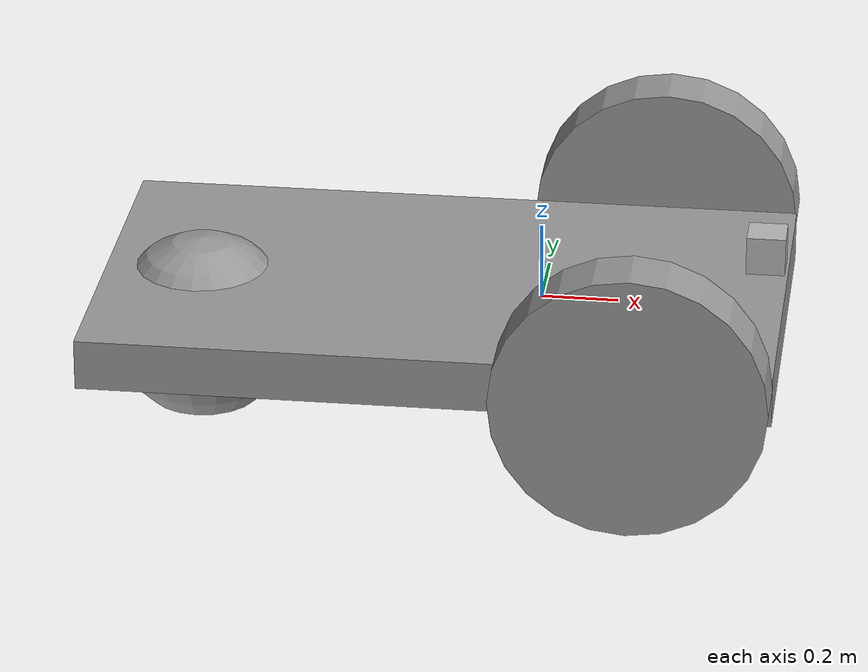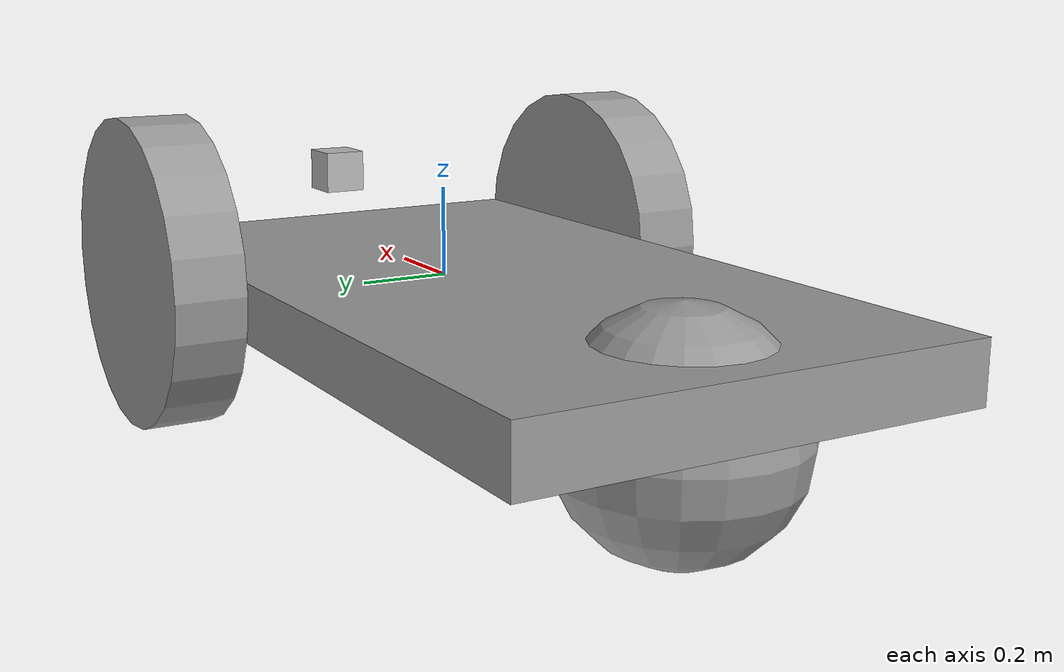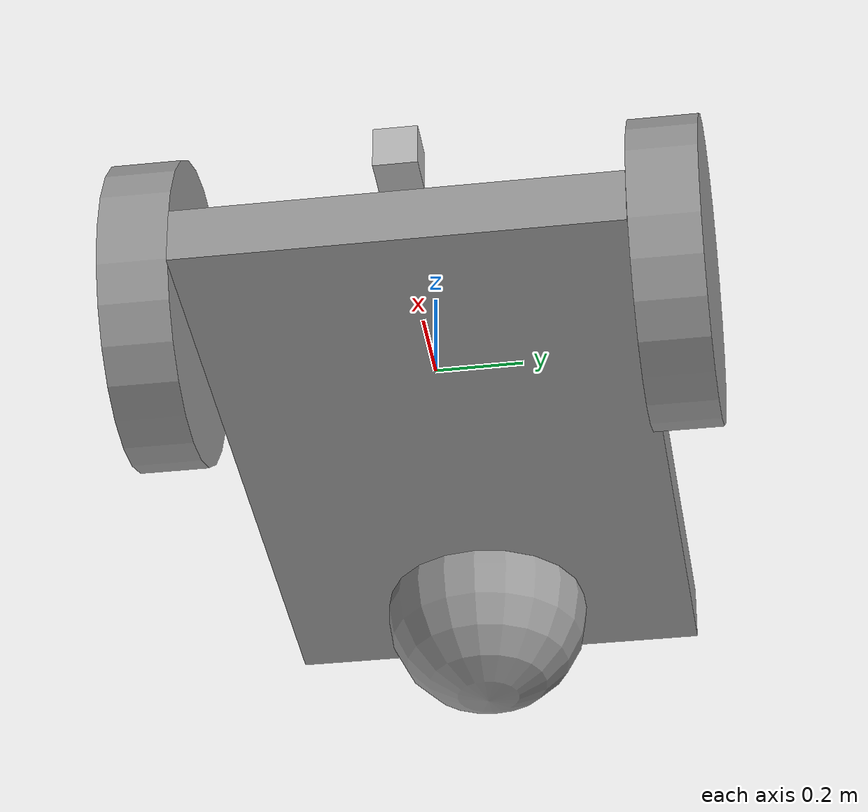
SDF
<?xml version='1.0'?>
<sdf version='1.7'>
  <model name='FirstVehicle'>
    <link name='link_1'>
      <inertial>
        <mass>0.233092</mass>
        <inertia>
          <ixx>0.0197635</ixx>
          <ixy>0</ixy>
          <ixz>0</ixz>
          <iyy>0.0608127</iyy>
          <iyz>0</iyz>
          <izz>0.0798979</izz>
        </inertia>
        <pose>0 0 0 0 -0 0</pose>
      </inertial>
      <pose>-0.25251 0 -0.021611 0 -0 0</pose>
      <visual name='visual'>
        <pose>0 0 0 0 -0 0</pose>
        <geometry>
          <box>
            <size>1.76445 1 0.13214</size>
          </box>
        </geometry>
        <material>
          <lighting>1</lighting>
          <script>
            <uri>file://media/materials/scripts/gazebo.material</uri>
            <name>Gazebo/Grey</name>
          </script>
          <shader type='pixel'/>
          <emissive>0 0 0 1</emissive>
        </material>
        <transparency>0</transparency>
        <cast_shadows>1</cast_shadows>
      </visual>
      <collision name='collision'>
        <laser_retro>0</laser_retro>
        <max_contacts>10</max_contacts>
        <pose>0 0 0 0 -0 0</pose>
        <geometry>
          <box>
            <size>1.76445 1 0.13214</size>
          </box>
        </geometry>
        <surface>
          <friction>
            <ode>
              <mu>1</mu>
              <mu2>1</mu2>
              <fdir1>0 0 0</fdir1>
              <slip1>0</slip1>
              <slip2>0</slip2>
            </ode>
            <torsional>
              <coefficient>1</coefficient>
              <patch_radius>0</patch_radius>
              <surface_radius>0</surface_radius>
              <use_patch_radius>1</use_patch_radius>
              <ode>
                <slip>0</slip>
              </ode>
            </torsional>
          </friction>
          <bounce>
            <restitution_coefficient>0</restitution_coefficient>
            <threshold>1e+06</threshold>
          </bounce>
          <contact>
            <collide_without_contact>0</collide_without_contact>
            <collide_without_contact_bitmask>1</collide_without_contact_bitmask>
            <collide_bitmask>1</collide_bitmask>
            <ode>
              <soft_cfm>0</soft_cfm>
              <soft_erp>0.2</soft_erp>
              <kp>1e+13</kp>
              <kd>1</kd>
              <max_vel>0.01</max_vel>
              <min_depth>0</min_depth>
            </ode>
            <bullet>
              <split_impulse>1</split_impulse>
              <split_impulse_penetration_threshold>-0.01</split_impulse_penetration_threshold>
              <soft_cfm>0</soft_cfm>
              <soft_erp>0.2</soft_erp>
              <kp>1e+13</kp>
              <kd>1</kd>
            </bullet>
          </contact>
        </surface>
      </collision>
    </link>
    <link name='link_2'>
      <inertial>
        <mass>0.0767619</mass>
        <inertia>
          <ixx>0.00249494</ixx>
          <ixy>0</ixy>
          <ixz>0</ixz>
          <iyy>0.00249494</iyy>
          <iyz>0</iyz>
          <izz>0.00467187</izz>
        </inertia>
        <pose>0 0 0 0 -0 0</pose>
      </inertial>
      <pose>0.280829 -0.578862 0.015351 1.5707 -0 0</pose>
      <gravity>1</gravity>
      <self_collide>0</self_collide>
      <kinematic>0</kinematic>
      <enable_wind>0</enable_wind>
      <visual name='visual'>
        <pose>0 0 0 0 -0 0</pose>
        <geometry>
          <cylinder>
            <radius>0.348889</radius>
            <length>0.157657</length>
          </cylinder>
        </geometry>
        <material>
          <lighting>1</lighting>
          <script>
            <uri>file://media/materials/scripts/gazebo.material</uri>
            <name>Gazebo/Grey</name>
          </script>
          <shader type='pixel'>
            <normal_map>__default__</normal_map>
          </shader>
          <ambient>0.3 0.3 0.3 1</ambient>
          <diffuse>0.7 0.7 0.7 1</diffuse>
          <specular>0.01 0.01 0.01 1</specular>
          <emissive>0 0 0 1</emissive>
        </material>
        <transparency>0</transparency>
        <cast_shadows>1</cast_shadows>
      </visual>
      <collision name='collision'>
        <laser_retro>0</laser_retro>
        <max_contacts>10</max_contacts>
        <pose>0 0 0 0 -0 0</pose>
        <geometry>
          <cylinder>
            <radius>0.348889</radius>
            <length>0.157657</length>
          </cylinder>
        </geometry>
        <surface>
          <friction>
            <ode>
              <mu>1</mu>
              <mu2>1</mu2>
              <fdir1>0 0 0</fdir1>
              <slip1>0</slip1>
              <slip2>0</slip2>
            </ode>
            <torsional>
              <coefficient>1</coefficient>
              <patch_radius>0</patch_radius>
              <surface_radius>0</surface_radius>
              <use_patch_radius>1</use_patch_radius>
              <ode>
                <slip>0</slip>
              </ode>
            </torsional>
          </friction>
          <bounce>
            <restitution_coefficient>0</restitution_coefficient>
            <threshold>1e+06</threshold>
          </bounce>
          <contact>
            <collide_without_contact>0</collide_without_contact>
            <collide_without_contact_bitmask>1</collide_without_contact_bitmask>
            <collide_bitmask>1</collide_bitmask>
            <ode>
              <soft_cfm>0</soft_cfm>
              <soft_erp>0.2</soft_erp>
              <kp>1e+13</kp>
              <kd>1</kd>
              <max_vel>0.01</max_vel>
              <min_depth>0</min_depth>
            </ode>
            <bullet>
              <split_impulse>1</split_impulse>
              <split_impulse_penetration_threshold>-0.01</split_impulse_penetration_threshold>
              <soft_cfm>0</soft_cfm>
              <soft_erp>0.2</soft_erp>
              <kp>1e+13</kp>
              <kd>1</kd>
            </bullet>
          </contact>
        </surface>
      </collision>
    </link>
    <link name='link_2_clone'>
      <inertial>
        <mass>0.0767619</mass>
        <inertia>
          <ixx>0.00249494</ixx>
          <ixy>0</ixy>
          <ixz>0</ixz>
          <iyy>0.00249494</iyy>
          <iyz>0</iyz>
          <izz>0.00467187</izz>
        </inertia>
        <pose>0 0 0 0 -0 0</pose>
      </inertial>
      <pose>0.280829 0.578862 0.015354 1.5707 -0 0</pose>
      <gravity>1</gravity>
      <self_collide>0</self_collide>
      <kinematic>0</kinematic>
      <enable_wind>0</enable_wind>
      <visual name='visual'>
        <pose>0 0 0 0 -0 0</pose>
        <geometry>
          <cylinder>
            <radius>0.348889</radius>
            <length>0.157657</length>
          </cylinder>
        </geometry>
        <material>
          <lighting>1</lighting>
          <script>
            <uri>file://media/materials/scripts/gazebo.material</uri>
            <name>Gazebo/Grey</name>
          </script>
          <shader type='pixel'>
            <normal_map>__default__</normal_map>
          </shader>
          <ambient>0.3 0.3 0.3 1</ambient>
          <diffuse>0.7 0.7 0.7 1</diffuse>
          <specular>0.01 0.01 0.01 1</specular>
          <emissive>0 0 0 1</emissive>
        </material>
        <transparency>0</transparency>
        <cast_shadows>1</cast_shadows>
      </visual>
      <collision name='collision'>
        <laser_retro>0</laser_retro>
        <max_contacts>10</max_contacts>
        <pose>0 0 0 0 -0 0</pose>
        <geometry>
          <cylinder>
            <radius>0.348889</radius>
            <length>0.157657</length>
          </cylinder>
        </geometry>
        <surface>
          <friction>
            <ode>
              <mu>1</mu>
              <mu2>1</mu2>
              <fdir1>0 0 0</fdir1>
              <slip1>0</slip1>
              <slip2>0</slip2>
            </ode>
            <torsional>
              <coefficient>1</coefficient>
              <patch_radius>0</patch_radius>
              <surface_radius>0</surface_radius>
              <use_patch_radius>1</use_patch_radius>
              <ode>
                <slip>0</slip>
              </ode>
            </torsional>
          </friction>
          <bounce>
            <restitution_coefficient>0</restitution_coefficient>
            <threshold>1e+06</threshold>
          </bounce>
          <contact>
            <collide_without_contact>0</collide_without_contact>
            <collide_without_contact_bitmask>1</collide_without_contact_bitmask>
            <collide_bitmask>1</collide_bitmask>
            <ode>
              <soft_cfm>0</soft_cfm>
              <soft_erp>0.2</soft_erp>
              <kp>1e+13</kp>
              <kd>1</kd>
              <max_vel>0.01</max_vel>
              <min_depth>0</min_depth>
            </ode>
            <bullet>
              <split_impulse>1</split_impulse>
              <split_impulse_penetration_threshold>-0.01</split_impulse_penetration_threshold>
              <soft_cfm>0</soft_cfm>
              <soft_erp>0.2</soft_erp>
              <kp>1e+13</kp>
              <kd>1</kd>
            </bullet>
          </contact>
        </surface>
      </collision>
    </link>
    <link name='link_3'>
      <inertial>
        <mass>0.118913</mass>
        <inertia>
          <ixx>0.00287543</ixx>
          <ixy>0</ixy>
          <ixz>0</ixz>
          <iyy>0.00287543</iyy>
          <iyz>0</iyz>
          <izz>0.00287543</izz>
        </inertia>
        <pose>0 0 0 0 -0 0</pose>
      </inertial>
      <pose>-0.888867 0 -0.127482 0 -0 0</pose>
      <visual name='visual'>
        <pose>0 0 0 0 -0 0</pose>
        <geometry>
          <sphere>
            <radius>0.245871</radius>
          </sphere>
        </geometry>
        <material>
          <lighting>1</lighting>
          <script>
            <uri>file://media/materials/scripts/gazebo.material</uri>
            <name>Gazebo/Grey</name>
          </script>
          <shader type='pixel'/>
          <emissive>0 0 0 1</emissive>
        </material>
        <transparency>0</transparency>
        <cast_shadows>1</cast_shadows>
      </visual>
      <collision name='collision'>
        <laser_retro>0</laser_retro>
        <max_contacts>10</max_contacts>
        <pose>0 0 0 0 -0 0</pose>
        <geometry>
          <sphere>
            <radius>0.245871</radius>
          </sphere>
        </geometry>
        <surface>
          <friction>
            <ode>
              <mu>1</mu>
              <mu2>1</mu2>
              <fdir1>0 0 0</fdir1>
              <slip1>0</slip1>
              <slip2>0</slip2>
            </ode>
            <torsional>
              <coefficient>1</coefficient>
              <patch_radius>0</patch_radius>
              <surface_radius>0</surface_radius>
              <use_patch_radius>1</use_patch_radius>
              <ode>
                <slip>0</slip>
              </ode>
            </torsional>
          </friction>
          <bounce>
            <restitution_coefficient>0</restitution_coefficient>
            <threshold>1e+06</threshold>
          </bounce>
          <contact>
            <collide_without_contact>0</collide_without_contact>
            <collide_without_contact_bitmask>1</collide_without_contact_bitmask>
            <collide_bitmask>1</collide_bitmask>
            <ode>
              <soft_cfm>0</soft_cfm>
              <soft_erp>0.2</soft_erp>
              <kp>1e+13</kp>
              <kd>1</kd>
              <max_vel>0.01</max_vel>
              <min_depth>0</min_depth>
            </ode>
            <bullet>
              <split_impulse>1</split_impulse>
              <split_impulse_penetration_threshold>-0.01</split_impulse_penetration_threshold>
              <soft_cfm>0</soft_cfm>
              <soft_erp>0.2</soft_erp>
              <kp>1e+13</kp>
              <kd>1</kd>
            </bullet>
          </contact>
        </surface>
      </collision>
    </link>
    <model name='depth_camera'>
      <link name='link'>
        <pose>0 0 0.05 0 -0 0</pose>
        <inertial>
          <mass>0.1</mass>
          <inertia>
            <ixx>0.000166667</ixx>
            <iyy>0.000166667</iyy>
            <izz>0.000166667</izz>
            <ixy>0</ixy>
            <ixz>0</ixz>
            <iyz>0</iyz>
          </inertia>
        </inertial>
        <collision name='collision'>
          <geometry>
            <box>
              <size>0.1 0.1 0.1</size>
            </box>
          </geometry>
        </collision>
        <visual name='visual'>
          <geometry>
            <box>
              <size>0.1 0.1 0.1</size>
            </box>
          </geometry>
        </visual>
        <sensor name='camera' type='depth'>
          <camera>
            <horizontal_fov>1.047</horizontal_fov>
            <image>
              <width>320</width>
              <height>240</height>
            </image>
            <clip>
              <near>0.1</near>
              <far>100</far>
            </clip>
          </camera>
          <always_on>1</always_on>
          <update_rate>30</update_rate>
          <visualize>1</visualize>
        </sensor>
      </link>
      <pose>0.579718 0 0.118389 0 -0 0</pose>
    </model>
    <joint name='link_1_JOINT_0' type='fixed'>
      <parent>link_1</parent>
      <child>depth_camera::link</child>
      <pose>0 0 0 0 -0 0</pose>
      <physics>
        <ode>
          <limit>
            <cfm>0</cfm>
            <erp>0.2</erp>
          </limit>
          <suspension>
            <cfm>0</cfm>
            <erp>0.2</erp>
          </suspension>
        </ode>
      </physics>
    </joint>
    <joint name='link_1_JOINT_1' type='revolute'>
      <parent>link_1</parent>
      <child>link_2</child>
      <pose>0 0 0 0 -0 0</pose>
      <axis>
        <xyz>0 0 1</xyz>
        <limit>
          <lower>-1.79769e+308</lower>
          <upper>1.79769e+308</upper>
          <effort>-1</effort>
          <velocity>-1</velocity>
        </limit>
        <dynamics>
          <spring_reference>0</spring_reference>
          <spring_stiffness>0</spring_stiffness>
          <damping>0</damping>
        </dynamics>
      </axis>
      <physics>
        <ode>
          <limit>
            <cfm>0</cfm>
            <erp>0.2</erp>
          </limit>
          <suspension>
            <cfm>0</cfm>
            <erp>0.2</erp>
          </suspension>
        </ode>
      </physics>
    </joint>
    <joint name='link_1_JOINT_2' type='revolute'>
      <parent>link_1</parent>
      <child>link_2_clone</child>
      <pose>0 0 0 0 -0 0</pose>
      <axis>
        <xyz>-0 -0 -1</xyz>
        <limit>
          <lower>-1.79769e+308</lower>
          <upper>1.79769e+308</upper>
          <effort>-1</effort>
          <velocity>-1</velocity>
        </limit>
        <dynamics>
          <spring_reference>0</spring_reference>
          <spring_stiffness>0</spring_stiffness>
          <damping>0</damping>
        </dynamics>
      </axis>
      <physics>
        <ode>
          <limit>
            <cfm>0</cfm>
            <erp>0.2</erp>
          </limit>
          <suspension>
            <cfm>0</cfm>
            <erp>0.2</erp>
          </suspension>
        </ode>
      </physics>
    </joint>
    <joint name='link_1_JOINT_3' type='ball'>
      <parent>link_1</parent>
      <child>link_3</child>
      <pose>0 0 0 0 -0 0</pose>
      <physics>
        <ode>
          <limit>
            <cfm>0</cfm>
            <erp>0.2</erp>
          </limit>
          <suspension>
            <cfm>0</cfm>
            <erp>0.2</erp>
          </suspension>
        </ode>
      </physics>
    </joint>
    <static>0</static>
    <allow_auto_disable>1</allow_auto_disable>
    <plugin name='follower' filename='libFollowerPlugin.so'/>
  </model>
</sdf>
